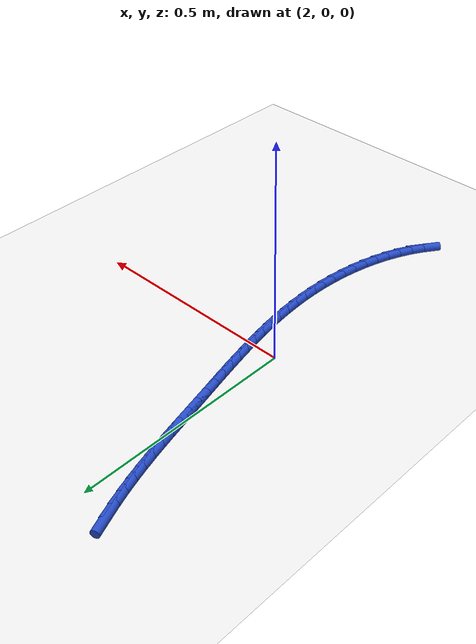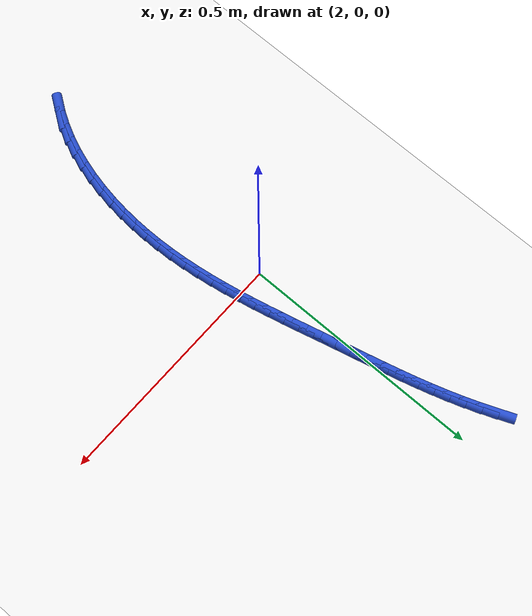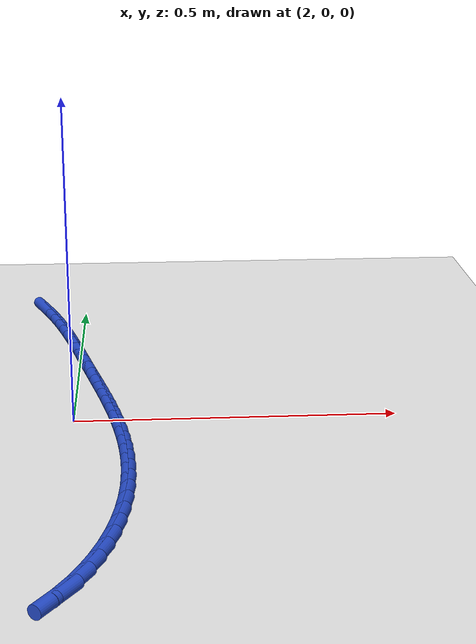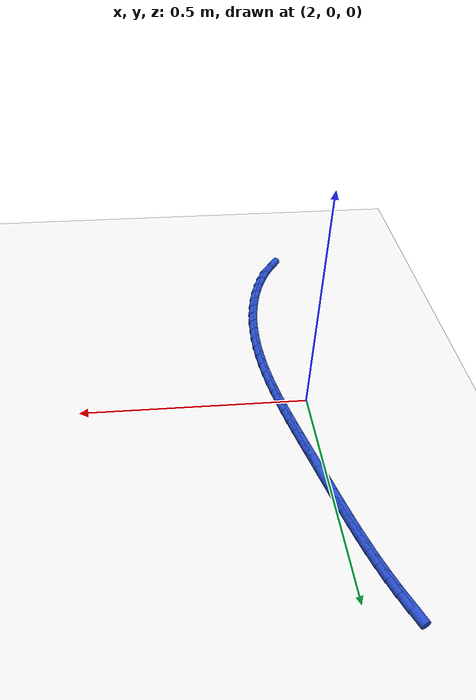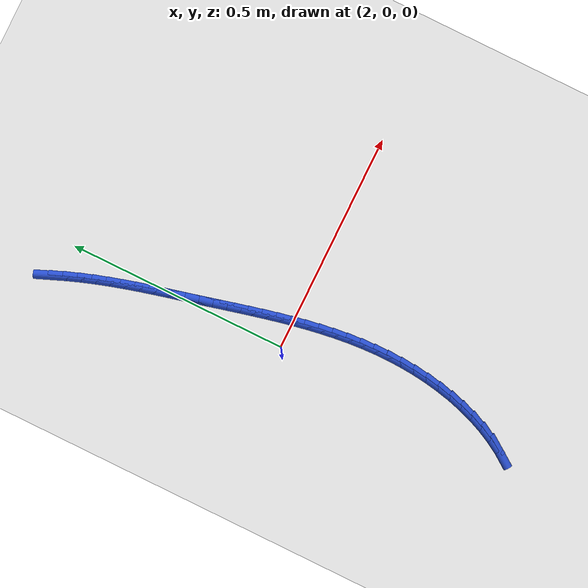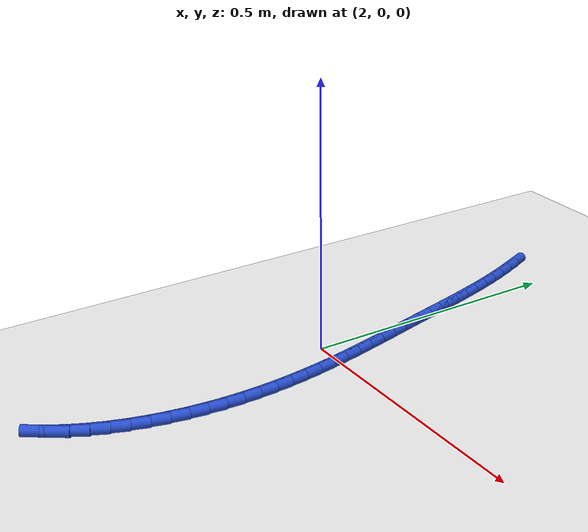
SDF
<sdf version="1.6">
 <world name="default">
  <model name="ground_plane">
   <static>1</static>
   <link name="link">
    <collision name="collision">
     <geometry><plane><normal>0 0 1</normal><size>100 100</size></plane></geometry>
     <surface><friction><ode><mu>100</mu><mu2>50</mu2></ode></friction></surface>
    </collision>
    <visual name="visual">
     <cast_shadows>0</cast_shadows>
     <geometry><plane><normal>0 0 1</normal><size>100 100</size></plane></geometry>
     <material>
      <script><uri>file://media/materials/scripts/gazebo.material</uri><name>Gazebo/WhiteGlow</name></script>
     </material>
    </visual>
   </link>
  </model>
  <model name="line">
   <link name="link_86">
    <pose>1.9220660772593394 0.512930246184888 0.01 0 1.57 -1.1867877860173937</pose>
    <collision name="collision">
     <geometry><cylinder><radius>0.01</radius><length>0.08</length></cylinder></geometry>
    </collision>
    <visual name="visual">
     <material>
      <script><name>Gazebo/Blue</name><uri>file://media/materials/scripts/gazebo.material</uri></script>
     </material>
     <geometry><cylinder><radius>0.01</radius><length>0.08</length></cylinder></geometry>
    </visual>
   </link>
   <link name="link_87">
    <pose>1.9339824023124774 0.48343937236578804 0.01 0 1.57 -1.2160299290499876</pose>
    <collision name="collision">
     <geometry><cylinder><radius>0.01</radius><length>0.08</length></cylinder></geometry>
    </collision>
    <visual name="visual">
     <material>
      <script><name>Gazebo/Blue</name><uri>file://media/materials/scripts/gazebo.material</uri></script>
     </material>
     <geometry><cylinder><radius>0.01</radius><length>0.08</length></cylinder></geometry>
    </visual>
   </link>
   <link name="link_88">
    <pose>1.9450031555271718 0.453688887630447 0.01 0 1.57 -1.2425497507887915</pose>
    <collision name="collision">
     <geometry><cylinder><radius>0.01</radius><length>0.08</length></cylinder></geometry>
    </collision>
    <visual name="visual">
     <material>
      <script><name>Gazebo/Blue</name><uri>file://media/materials/scripts/gazebo.material</uri></script>
     </material>
     <geometry><cylinder><radius>0.01</radius><length>0.08</length></cylinder></geometry>
    </visual>
   </link>
   <link name="link_89">
    <pose>1.9551818302458537 0.42380144196696945 0.01 0 1.57 -1.2659897522462507</pose>
    <collision name="collision">
     <geometry><cylinder><radius>0.01</radius><length>0.08</length></cylinder></geometry>
    </collision>
    <visual name="visual">
     <material>
      <script><name>Gazebo/Blue</name><uri>file://media/materials/scripts/gazebo.material</uri></script>
     </material>
     <geometry><cylinder><radius>0.01</radius><length>0.08</length></cylinder></geometry>
    </visual>
   </link>
   <link name="link_90">
    <pose>1.9646097412473145 0.3938345250358924 0.01 0 1.57 -1.2859193336759651</pose>
    <collision name="collision">
     <geometry><cylinder><radius>0.01</radius><length>0.08</length></cylinder></geometry>
    </collision>
    <visual name="visual">
     <material>
      <script><name>Gazebo/Blue</name><uri>file://media/materials/scripts/gazebo.material</uri></script>
     </material>
     <geometry><cylinder><radius>0.01</radius><length>0.08</length></cylinder></geometry>
    </visual>
   </link>
   <link name="link_91">
    <pose>1.9734055469956038 0.3637985176711296 0.01 0 1.57 -1.302225261647533</pose>
    <collision name="collision">
     <geometry><cylinder><radius>0.01</radius><length>0.08</length></cylinder></geometry>
    </collision>
    <visual name="visual">
     <material>
      <script><name>Gazebo/Blue</name><uri>file://media/materials/scripts/gazebo.material</uri></script>
     </material>
     <geometry><cylinder><radius>0.01</radius><length>0.08</length></cylinder></geometry>
    </visual>
   </link>
   <link name="link_92">
    <pose>1.981688514202894 0.33370275279168676 0.01 0 1.57 -1.3148323002504612</pose>
    <collision name="collision">
     <geometry><cylinder><radius>0.01</radius><length>0.08</length></cylinder></geometry>
    </collision>
    <visual name="visual">
     <material>
      <script><name>Gazebo/Blue</name><uri>file://media/materials/scripts/gazebo.material</uri></script>
     </material>
     <geometry><cylinder><radius>0.01</radius><length>0.08</length></cylinder></geometry>
    </visual>
   </link>
   <link name="link_93">
    <pose>1.9895779095813593 0.30355656331657066 0.01 0 1.57 -1.3236902835116557</pose>
    <collision name="collision">
     <geometry><cylinder><radius>0.01</radius><length>0.08</length></cylinder></geometry>
    </collision>
    <visual name="visual">
     <material>
      <script><name>Gazebo/Blue</name><uri>file://media/materials/scripts/gazebo.material</uri></script>
     </material>
     <geometry><cylinder><radius>0.01</radius><length>0.08</length></cylinder></geometry>
    </visual>
   </link>
   <link name="link_94">
    <pose>1.9971929998431714 0.2733692821647866 0.01 0 1.57 -1.3287695302954055</pose>
    <collision name="collision">
     <geometry><cylinder><radius>0.01</radius><length>0.08</length></cylinder></geometry>
    </collision>
    <visual name="visual">
     <material>
      <script><name>Gazebo/Blue</name><uri>file://media/materials/scripts/gazebo.material</uri></script>
     </material>
     <geometry><cylinder><radius>0.01</radius><length>0.08</length></cylinder></geometry>
    </visual>
   </link>
   <link name="link_95">
    <pose>2.0046530517005037 0.24315024225534013 0.01 0 1.57 -1.3300574114632475</pose>
    <collision name="collision">
     <geometry><cylinder><radius>0.01</radius><length>0.08</length></cylinder></geometry>
    </collision>
    <visual name="visual">
     <material>
      <script><name>Gazebo/Blue</name><uri>file://media/materials/scripts/gazebo.material</uri></script>
     </material>
     <geometry><cylinder><radius>0.01</radius><length>0.08</length></cylinder></geometry>
    </visual>
   </link>
   <link name="link_96">
    <pose>2.012077331865529 0.212908776507238 0.01 0 1.57 -1.3277602406159739</pose>
    <collision name="collision">
     <geometry><cylinder><radius>0.01</radius><length>0.08</length></cylinder></geometry>
    </collision>
    <visual name="visual">
     <material>
      <script><name>Gazebo/Blue</name><uri>file://media/materials/scripts/gazebo.material</uri></script>
     </material>
     <geometry><cylinder><radius>0.01</radius><length>0.08</length></cylinder></geometry>
    </visual>
   </link>
   <link name="link_97">
    <pose>2.0195787305965713 0.18265351654252465 0.01 0 1.57 -1.3255717425198212</pose>
    <collision name="collision">
     <geometry><cylinder><radius>0.01</radius><length>0.08</length></cylinder></geometry>
    </collision>
    <visual name="visual">
     <material>
      <script><name>Gazebo/Blue</name><uri>file://media/materials/scripts/gazebo.material</uri></script>
     </material>
     <geometry><cylinder><radius>0.01</radius><length>0.08</length></cylinder></geometry>
    </visual>
   </link>
   <link name="link_98">
    <pose>2.0271549149447274 0.152380421471691 0.01 0 1.57 -1.3266850893995947</pose>
    <collision name="collision">
     <geometry><cylinder><radius>0.01</radius><length>0.08</length></cylinder></geometry>
    </collision>
    <visual name="visual">
     <material>
      <script><name>Gazebo/Blue</name><uri>file://media/materials/scripts/gazebo.material</uri></script>
     </material>
     <geometry><cylinder><radius>0.01</radius><length>0.08</length></cylinder></geometry>
    </visual>
   </link>
   <link name="link_99">
    <pose>2.034703483990513 0.1220744447012234 0.01 0 1.57 -1.3311995350414354</pose>
    <collision name="collision">
     <geometry><cylinder><radius>0.01</radius><length>0.08</length></cylinder></geometry>
    </collision>
    <visual name="visual">
     <material>
      <script><name>Gazebo/Blue</name><uri>file://media/materials/scripts/gazebo.material</uri></script>
     </material>
     <geometry><cylinder><radius>0.01</radius><length>0.08</length></cylinder></geometry>
    </visual>
   </link>
   <link name="link_100">
    <pose>2.0421187103164953 0.09172017378176354 0.01 0 1.57 -1.3391143458516679</pose>
    <collision name="collision">
     <geometry><cylinder><radius>0.01</radius><length>0.08</length></cylinder></geometry>
    </collision>
    <visual name="visual">
     <material>
      <script><name>Gazebo/Blue</name><uri>file://media/materials/scripts/gazebo.material</uri></script>
     </material>
     <geometry><cylinder><radius>0.01</radius><length>0.08</length></cylinder></geometry>
    </visual>
   </link>
   <link name="link_101">
    <pose>2.0492948665052433 0.061302196263953265 0.01 0 1.57 -1.3504336213217978</pose>
    <collision name="collision">
     <geometry><cylinder><radius>0.01</radius><length>0.08</length></cylinder></geometry>
    </collision>
    <visual name="visual">
     <material>
      <script><name>Gazebo/Blue</name><uri>file://media/materials/scripts/gazebo.material</uri></script>
     </material>
     <geometry><cylinder><radius>0.01</radius><length>0.08</length></cylinder></geometry>
    </visual>
   </link>
   <link name="link_102">
    <pose>2.0561262251393257 0.030805099698435513 0.01 0 1.57 -1.3651635445732133</pose>
    <collision name="collision">
     <geometry><cylinder><radius>0.01</radius><length>0.08</length></cylinder></geometry>
    </collision>
    <visual name="visual">
     <material>
      <script><name>Gazebo/Blue</name><uri>file://media/materials/scripts/gazebo.material</uri></script>
     </material>
     <geometry><cylinder><radius>0.01</radius><length>0.08</length></cylinder></geometry>
    </visual>
   </link>
   <link name="link_103">
    <pose>2.062507058801312 0.0002134716358520635 0.01 0 1.57 -1.3833084416051635</pose>
    <collision name="collision">
     <geometry><cylinder><radius>0.01</radius><length>0.08</length></cylinder></geometry>
    </collision>
    <visual name="visual">
     <material>
      <script><name>Gazebo/Blue</name><uri>file://media/materials/scripts/gazebo.material</uri></script>
     </material>
     <geometry><cylinder><radius>0.01</radius><length>0.08</length></cylinder></geometry>
    </visual>
   </link>
   <link name="link_104">
    <pose>2.0683316400737692 -0.03048810037315487 0.01 0 1.57 -1.4048656322574022</pose>
    <collision name="collision">
     <geometry><cylinder><radius>0.01</radius><length>0.08</length></cylinder></geometry>
    </collision>
    <visual name="visual">
     <material>
      <script><name>Gazebo/Blue</name><uri>file://media/materials/scripts/gazebo.material</uri></script>
     </material>
     <geometry><cylinder><radius>0.01</radius><length>0.08</length></cylinder></geometry>
    </visual>
   </link>
   <link name="link_105">
    <pose>2.0734942415392674 -0.06131502877794315 0.01 0 1.57 -1.4298191014243569</pose>
    <collision name="collision">
     <geometry><cylinder><radius>0.01</radius><length>0.08</length></cylinder></geometry>
    </collision>
    <visual name="visual">
     <material>
      <script><name>Gazebo/Blue</name><uri>file://media/materials/scripts/gazebo.material</uri></script>
     </material>
     <geometry><cylinder><radius>0.01</radius><length>0.08</length></cylinder></geometry>
    </visual>
   </link>
   <link name="link_106">
    <pose>2.077889135780375 -0.09228272602787131 0.01 0 1.57 -1.4581321095089002</pose>
    <collision name="collision">
     <geometry><cylinder><radius>0.01</radius><length>0.08</length></cylinder></geometry>
    </collision>
    <visual name="visual">
     <material>
      <script><name>Gazebo/Blue</name><uri>file://media/materials/scripts/gazebo.material</uri></script>
     </material>
     <geometry><cylinder><radius>0.01</radius><length>0.08</length></cylinder></geometry>
    </visual>
   </link>
   <link name="link_107">
    <pose>2.0814105953796602 -0.12340660457229577 0.01 0 1.57 -1.4897390032566196</pose>
    <collision name="collision">
     <geometry><cylinder><radius>0.01</radius><length>0.08</length></cylinder></geometry>
    </collision>
    <visual name="visual">
     <material>
      <script><name>Gazebo/Blue</name><uri>file://media/materials/scripts/gazebo.material</uri></script>
     </material>
     <geometry><cylinder><radius>0.01</radius><length>0.08</length></cylinder></geometry>
    </visual>
   </link>
   <link name="link_108">
    <pose>2.0839528929196924 -0.154702076860575 0.01 0 1.57 -1.524536680495766</pose>
    <collision name="collision">
     <geometry><cylinder><radius>0.01</radius><length>0.08</length></cylinder></geometry>
    </collision>
    <visual name="visual">
     <material>
      <script><name>Gazebo/Blue</name><uri>file://media/materials/scripts/gazebo.material</uri></script>
     </material>
     <geometry><cylinder><radius>0.01</radius><length>0.08</length></cylinder></geometry>
    </visual>
   </link>
   <link name="link_109">
    <pose>2.0854103009830394 -0.1861845553420668 0.01 0 1.57 -1.5623763889486102</pose>
    <collision name="collision">
     <geometry><cylinder><radius>0.01</radius><length>0.08</length></cylinder></geometry>
    </collision>
    <visual name="visual">
     <material>
      <script><name>Gazebo/Blue</name><uri>file://media/materials/scripts/gazebo.material</uri></script>
     </material>
     <geometry><cylinder><radius>0.01</radius><length>0.08</length></cylinder></geometry>
    </visual>
   </link>
   <link name="link_110">
    <pose>2.085677092152271 -0.21786945246612915 0.01 0 1.57 1.5385582514135883</pose>
    <collision name="collision">
     <geometry><cylinder><radius>0.01</radius><length>0.08</length></cylinder></geometry>
    </collision>
    <visual name="visual">
     <material>
      <script><name>Gazebo/Blue</name><uri>file://media/materials/scripts/gazebo.material</uri></script>
     </material>
     <geometry><cylinder><radius>0.01</radius><length>0.08</length></cylinder></geometry>
    </visual>
   </link>
   <link name="link_111">
    <pose>2.084648381917439 -0.24976818775618803 0.01 0 1.57 1.4957150408959135</pose>
    <collision name="collision">
     <geometry><cylinder><radius>0.01</radius><length>0.08</length></cylinder></geometry>
    </collision>
    <visual name="visual">
     <material>
      <script><name>Gazebo/Blue</name><uri>file://media/materials/scripts/gazebo.material</uri></script>
     </material>
     <geometry><cylinder><radius>0.01</radius><length>0.08</length></cylinder></geometry>
    </visual>
   </link>
   <link name="link_112">
    <pose>2.0822389281164932 -0.28179913322839717 0.01 0 1.57 1.4508398938530882</pose>
    <collision name="collision">
     <geometry><cylinder><radius>0.01</radius><length>0.08</length></cylinder></geometry>
    </collision>
    <visual name="visual">
     <material>
      <script><name>Gazebo/Blue</name><uri>file://media/materials/scripts/gazebo.material</uri></script>
     </material>
     <geometry><cylinder><radius>0.01</radius><length>0.08</length></cylinder></geometry>
    </visual>
   </link>
   <link name="link_113">
    <pose>2.0783832739234183 -0.31378693604440905 0.01 0 1.57 1.4034356402801904</pose>
    <collision name="collision">
     <geometry><cylinder><radius>0.01</radius><length>0.08</length></cylinder></geometry>
    </collision>
    <visual name="visual">
     <material>
      <script><name>Gazebo/Blue</name><uri>file://media/materials/scripts/gazebo.material</uri></script>
     </material>
     <geometry><cylinder><radius>0.01</radius><length>0.08</length></cylinder></geometry>
    </visual>
   </link>
   <link name="link_114">
    <pose>2.0730168340177837 -0.34555211496826677 0.01 0 1.57 1.352971034473516</pose>
    <collision name="collision">
     <geometry><cylinder><radius>0.01</radius><length>0.08</length></cylinder></geometry>
    </collision>
    <visual name="visual">
     <material>
      <script><name>Gazebo/Blue</name><uri>file://media/materials/scripts/gazebo.material</uri></script>
     </material>
     <geometry><cylinder><radius>0.01</radius><length>0.08</length></cylinder></geometry>
    </visual>
   </link>
   <link name="link_115">
    <pose>2.0660750230791556 -0.37691518876401287 0.01 0 1.57 1.298904087866447</pose>
    <collision name="collision">
     <geometry><cylinder><radius>0.01</radius><length>0.08</length></cylinder></geometry>
    </collision>
    <visual name="visual">
     <material>
      <script><name>Gazebo/Blue</name><uri>file://media/materials/scripts/gazebo.material</uri></script>
     </material>
     <geometry><cylinder><radius>0.01</radius><length>0.08</length></cylinder></geometry>
    </visual>
   </link>
   <link name="link_116">
    <pose>2.057493255787102 -0.40769667619568994 0.01 0 1.57 1.2406899391278774</pose>
    <collision name="collision">
     <geometry><cylinder><radius>0.01</radius><length>0.08</length></cylinder></geometry>
    </collision>
    <visual name="visual">
     <material>
      <script><name>Gazebo/Blue</name><uri>file://media/materials/scripts/gazebo.material</uri></script>
     </material>
     <geometry><cylinder><radius>0.01</radius><length>0.08</length></cylinder></geometry>
    </visual>
   </link>
   <link name="link_117">
    <pose>2.0472069468211926 -0.43771709602734066 0.01 0 1.57 1.1777990945563597</pose>
    <collision name="collision">
     <geometry><cylinder><radius>0.01</radius><length>0.08</length></cylinder></geometry>
    </collision>
    <visual name="visual">
     <material>
      <script><name>Gazebo/Blue</name><uri>file://media/materials/scripts/gazebo.material</uri></script>
     </material>
     <geometry><cylinder><radius>0.01</radius><length>0.08</length></cylinder></geometry>
    </visual>
   </link>
   <link name="link_118">
    <pose>2.0351515108609948 -0.46679696702300727 0.01 0 1.57 1.1097493052026726</pose>
    <collision name="collision">
     <geometry><cylinder><radius>0.01</radius><length>0.08</length></cylinder></geometry>
    </collision>
    <visual name="visual">
     <material>
      <script><name>Gazebo/Blue</name><uri>file://media/materials/scripts/gazebo.material</uri></script>
     </material>
     <geometry><cylinder><radius>0.01</radius><length>0.08</length></cylinder></geometry>
    </visual>
   </link>
   <link name="link_119">
    <pose>2.0212623625860764 -0.49475680794673316 0.01 0 1.57 1.0361541134578052</pose>
    <collision name="collision">
     <geometry><cylinder><radius>0.01</radius><length>0.08</length></cylinder></geometry>
    </collision>
    <visual name="visual">
     <material>
      <script><name>Gazebo/Blue</name><uri>file://media/materials/scripts/gazebo.material</uri></script>
     </material>
     <geometry><cylinder><radius>0.01</radius><length>0.08</length></cylinder></geometry>
    </visual>
   </link>
   <link name="link_120">
    <pose>2.005474916676006 -0.5214171375625596 0.01 0 1.57 0.9567903690073406</pose>
    <collision name="collision">
     <geometry><cylinder><radius>0.01</radius><length>0.08</length></cylinder></geometry>
    </collision>
    <visual name="visual">
     <material>
      <script><name>Gazebo/Blue</name><uri>file://media/materials/scripts/gazebo.material</uri></script>
     </material>
     <geometry><cylinder><radius>0.01</radius><length>0.08</length></cylinder></geometry>
    </visual>
   </link>
  </model>
 </world>
</sdf>
